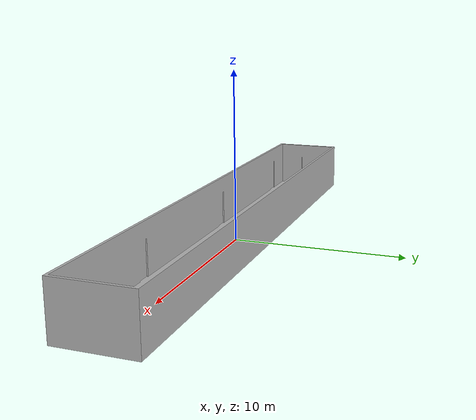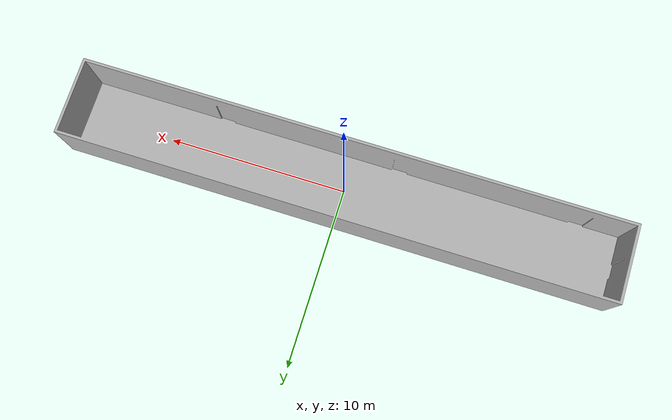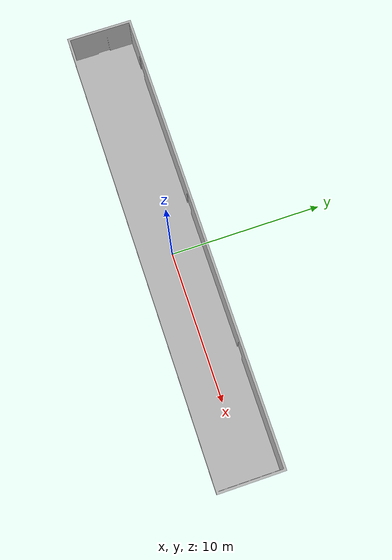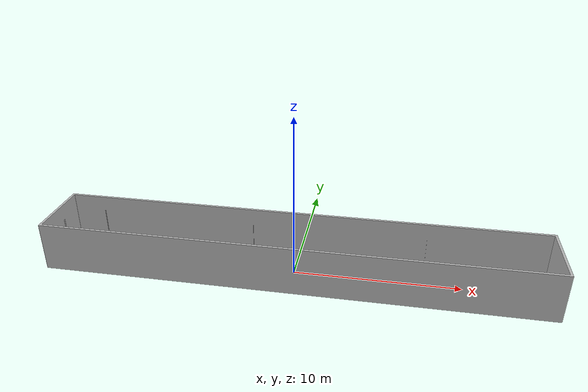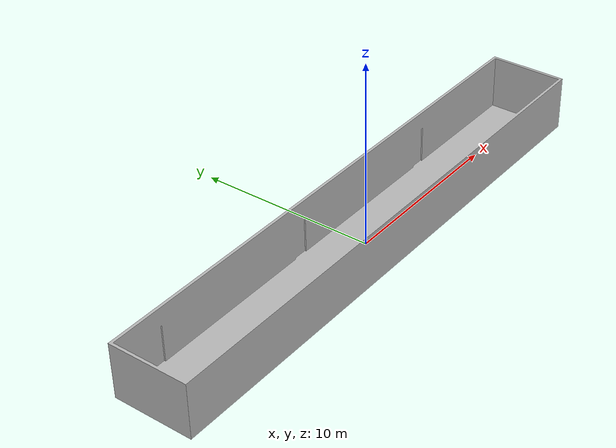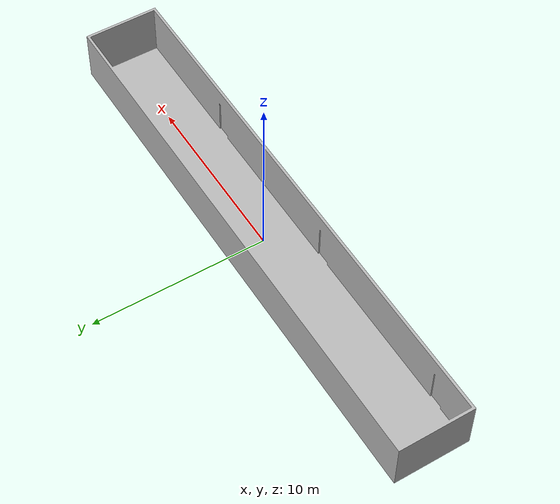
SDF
<sdf version='1.10'>
  <world name='empty_office_hallway'>
    <physics name='1ms' type='ignored'>
      <max_step_size>0.001</max_step_size>
      <real_time_factor>1</real_time_factor>
      <real_time_update_rate>1000</real_time_update_rate>
    </physics>
    <plugin name='gz::sim::systems::Physics' filename='gz-sim-physics-system'/>
    <plugin name='gz::sim::systems::UserCommands' filename='gz-sim-user-commands-system'/>
    <plugin name='gz::sim::systems::SceneBroadcaster' filename='gz-sim-scene-broadcaster-system'/>
    <plugin name='gz::sim::systems::Sensors' filename='gz-sim-sensors-system'>
      <render_engine>ogre2</render_engine>
    </plugin>
    <plugin name='gz::sim::systems::Contact' filename='gz-sim-contact-system'/>
    <gravity>0 0 -9.8000000000000007</gravity>
    <magnetic_field>5.5644999999999998e-06 2.2875799999999999e-05 -4.2388400000000002e-05</magnetic_field>
    <atmosphere type='adiabatic'/>
    <scene>
      <ambient>0.400000006 0.400000006 0.400000006 1</ambient>
      <background>0.699999988 0.699999988 0.699999988 1</background>
      <shadows>true</shadows>
    </scene>
    <model name='ground_plane'>
      <static>true</static>
      <link name='link'>
        <collision name='collision'>
          <geometry>
            <plane>
              <normal>0 0 1</normal>
              <size>100 100</size>
            </plane>
          </geometry>
          <surface>
            <friction>
              <ode/>
            </friction>
            <bounce/>
            <contact/>
          </surface>
        </collision>
        <pose>0 0 0 0 0 0</pose>
        <inertial>
          <pose>0 0 0 0 0 0</pose>
          <mass>1</mass>
          <inertia>
            <ixx>1</ixx>
            <ixy>0</ixy>
            <ixz>0</ixz>
            <iyy>1</iyy>
            <iyz>0</iyz>
            <izz>1</izz>
          </inertia>
        </inertial>
        <enable_wind>false</enable_wind>
      </link>
      <pose>0 0 0 0 0 0</pose>
      <self_collide>false</self_collide>
    </model>
    <model name='Office-Hallway'>
      <static>true</static>
      <link name='link'>
        <visual name='visual'>
          <geometry>
            <mesh>
              <uri>../custom_worlds/rooms/Office-Hallway.obj</uri>
            </mesh>
          </geometry>
        </visual>
        <collision name='collision'>
          <geometry>
            <mesh>
              <uri>../custom_worlds/rooms/Office-Hallway.obj</uri>
            </mesh>
          </geometry>
        </collision>
        <pose>0 0 0 0 0 0</pose>
        <inertial>
          <pose>0 0 0 0 0 0</pose>
          <mass>1</mass>
          <inertia>
            <ixx>1</ixx>
            <ixy>0</ixy>
            <ixz>0</ixz>
            <iyy>1</iyy>
            <iyz>0</iyz>
            <izz>1</izz>
          </inertia>
        </inertial>
        <enable_wind>false</enable_wind>
      </link>
      <pose>-1.2130320994978115e-08 4.1010608969150074e-08 0.0072055124430797169 1.5707959033232339 -1.2130678121465276e-06 -2.2705391839881612e-12</pose>
      <self_collide>false</self_collide>
    </model>

    <!-- Ceiling lights grid -->

    <light name="ceiling_light_1" type="point">
        <pose>-10 0 3 0 0 0</pose>
        <diffuse>0.6 0.6 0.6 1</diffuse>
        <specular>0.05 0.05 0.05 1</specular>
        <attenuation>
          <range>8</range>
          <constant>0.3</constant>
          <linear>0.4</linear>
          <quadratic>0.25</quadratic>
        </attenuation>
    </light>

    <light name="ceiling_light_2" type="point">
        <pose>-5 0 3 0 0 0</pose>
        <diffuse>0.6 0.6 0.6 1</diffuse>
        <specular>0.05 0.05 0.05 1</specular>
        <attenuation>
          <range>8</range>
          <constant>0.3</constant>
          <linear>0.4</linear>
          <quadratic>0.25</quadratic>
        </attenuation>
    </light>

    <light name="ceiling_light_3" type="point">
        <pose>0 0 3 0 0 0</pose>
        <diffuse>0.6 0.6 0.6 1</diffuse>
        <specular>0.05 0.05 0.05 1</specular>
        <attenuation>
          <range>8</range>
          <constant>0.3</constant>
          <linear>0.4</linear>
          <quadratic>0.25</quadratic>
        </attenuation>
    </light>

    <light name="ceiling_light_4" type="point">
        <pose>5 0 3 0 0 0</pose>
        <diffuse>0.6 0.6 0.6 1</diffuse>
        <specular>0.05 0.05 0.05 1</specular>
        <attenuation>
          <range>8</range>
          <constant>0.3</constant>
          <linear>0.4</linear>
          <quadratic>0.25</quadratic>
        </attenuation>
    </light>

    <light name="ceiling_light_5" type="point">
        <pose>10 0 3 0 0 0</pose>
        <diffuse>0.6 0.6 0.6 1</diffuse>
        <specular>0.05 0.05 0.05 1</specular>
        <attenuation>
          <range>8</range>
          <constant>0.3</constant>
          <linear>0.4</linear>
          <quadratic>0.25</quadratic>
        </attenuation>
    </light>
  </world>
</sdf>
